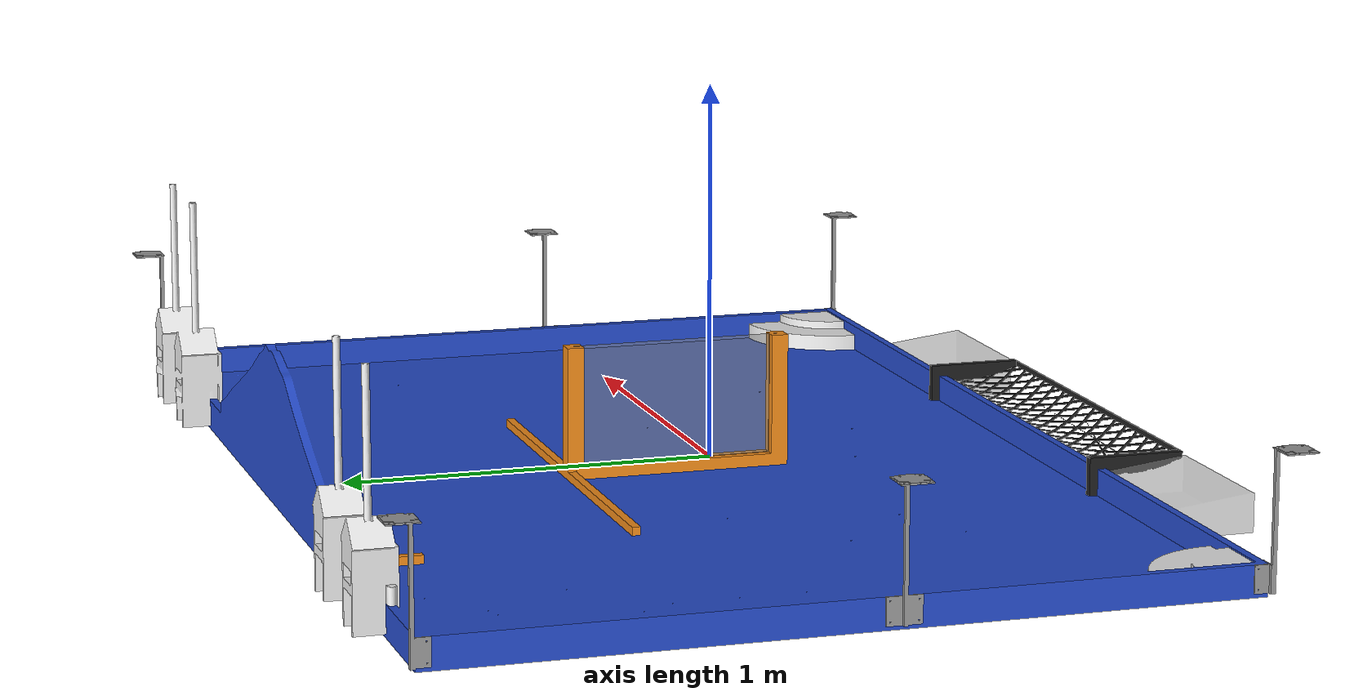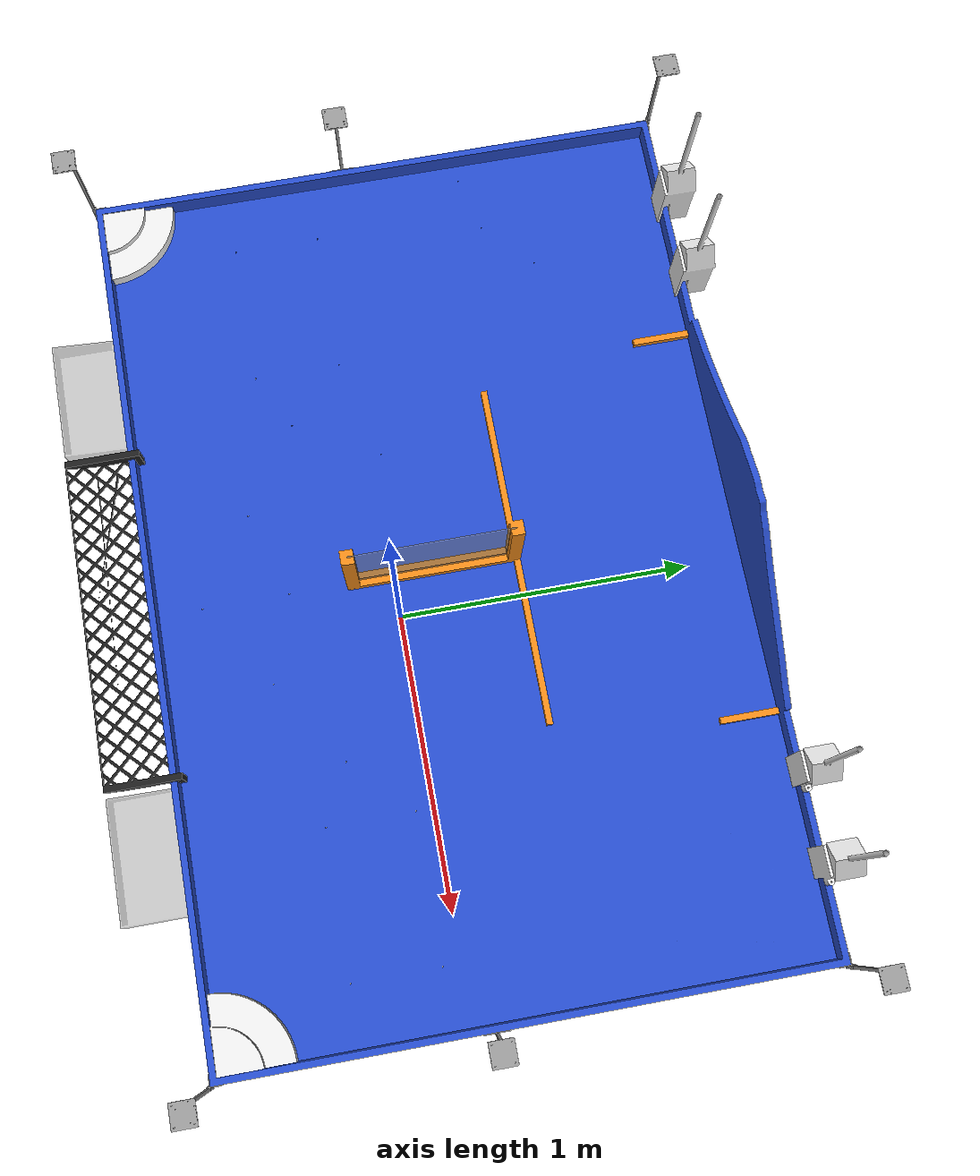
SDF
<?xml version="1.0" ?>
<sdf version="1.4">
  <model name="table2016">
    <pose>0 0 1  1.5708 0 0</pose>
    <static>true</static>
    <link name="1-Table">
      <visual name="visual">
        <geometry>
          <mesh>
            <scale>0.001 0.001 0.001</scale>
            <uri>model://table2016/meshes/1-Table.stl</uri>
          </mesh>
        </geometry>
        <material>
          <script>
            <uri>file://media/materials/scripts/gazebo.material</uri>
            <name>Gazebo/Blue</name>
          </script>
        </material>
      </visual>
      <collision name="collision">
        <geometry>
          <mesh>
            <scale>0.001 0.001 0.001</scale>
            <uri>model://table2016/meshes/1-Table.stl</uri>
          </mesh>
        </geometry>
      </collision>
    </link>
    <link name="2-Roundborder">
      <visual name="visual">
        <geometry>
          <mesh>
            <scale>0.001 0.001 0.001</scale>
            <uri>model://table2016/meshes/2-Roundborder.stl</uri>
          </mesh>
        </geometry>
        <material>
          <script>
            <uri>file://media/materials/scripts/gazebo.material</uri>
            <name>Gazebo/White</name>
          </script>
        </material>
      </visual>
      <collision name="collision">
        <geometry>
          <mesh>
            <scale>0.001 0.001 0.001</scale>
            <uri>model://table2016/meshes/2-Roundborder.stl</uri>
          </mesh>
        </geometry>
      </collision>
    </link>
    <link name="3-FishTank">
      <visual name="visual">
        <geometry>
          <mesh>
            <scale>0.001 0.001 0.001</scale>
            <uri>model://table2016/meshes/3-FishTank.stl</uri>
          </mesh>
        </geometry>
        <material>
          <script>
            <uri>file://media/materials/scripts/gazebo.material</uri>
            <name>Gazebo/GreyTransparent</name>
          </script>
        </material>
      </visual>
      <collision name="collision">
        <geometry>
          <mesh>
            <scale>0.001 0.001 0.001</scale>
            <uri>model://table2016/meshes/3-FishTank.stl</uri>
          </mesh>
        </geometry>
      </collision>
    </link>
    <link name="4-BeaconSupport">
      <visual name="visual">
        <geometry>
          <mesh>
            <scale>0.001 0.001 0.001</scale>
            <uri>model://table2016/meshes/4-BeaconSupport.stl</uri>
          </mesh>
        </geometry>
        <material>
          <script>
            <uri>file://media/materials/scripts/gazebo.material</uri>
            <name>Gazebo/Grey</name>
          </script>
        </material>
      </visual>
      <collision name="collision">
        <geometry>
          <mesh>
            <scale>0.001 0.001 0.001</scale>
            <uri>model://table2016/meshes/4-BeaconSupport.stl</uri>
          </mesh>
        </geometry>
      </collision>
    </link>
    <link name="5-WoodenRods">
      <visual name="visual">
        <geometry>
          <mesh>
            <scale>0.001 0.001 0.001</scale>
            <uri>model://table2016/meshes/5-WoodenRods.stl</uri>
          </mesh>
        </geometry>
        <material>
          <script>
            <uri>file://media/materials/scripts/gazebo.material</uri>
            <name>Gazebo/Orange</name>
          </script>
        </material>
      </visual>
      <collision name="collision">
        <geometry>
          <mesh>
            <scale>0.001 0.001 0.001</scale>
            <uri>model://table2016/meshes/5-WoodenRods.stl</uri>
          </mesh>
        </geometry>
      </collision>
    </link>
    <link name="6-GlassWall">
      <visual name="visual">
        <geometry>
          <mesh>
            <scale>0.001 0.001 0.001</scale>
            <uri>model://table2016/meshes/6-GlassWall.stl</uri>
          </mesh>
        </geometry>
        <material>
          <script>
            <uri>file://media/materials/scripts/gazebo.material</uri>
            <name>Gazebo/GreyTransparent</name>
          </script>
        </material>
      </visual>
      <collision name="collision">
        <geometry>
          <mesh>
            <scale>0.001 0.001 0.001</scale>
            <uri>model://table2016/meshes/6-GlassWall.stl</uri>
          </mesh>
        </geometry>
      </collision>
    </link>
    <link name="7-FishNet">
      <visual name="visual">
        <geometry>
          <mesh>
            <scale>0.001 0.001 0.001</scale>
            <uri>model://table2016/meshes/7-FishNet.stl</uri>
          </mesh>
        </geometry>
        <material>
          <script>
            <uri>file://media/materials/scripts/gazebo.material</uri>
            <name>Gazebo/Black</name>
          </script>
        </material>
      </visual>
      <collision name="collision">
        <geometry>
          <mesh>
            <scale>0.001 0.001 0.001</scale>
            <uri>model://table2016/meshes/7-FishNet.stl</uri>
          </mesh>
        </geometry>
      </collision>
    </link>
    <link name="8-BeachHut">
      <visual name="visual">
        <geometry>
          <mesh>
            <scale>0.001 0.001 0.001</scale>
            <uri>model://table2016/meshes/8-BeachHut.stl</uri>
          </mesh>
        </geometry>
        <material>
          <script>
            <uri>file://media/materials/scripts/gazebo.material</uri>
            <name>Gazebo/White</name>
          </script>
        </material>
      </visual>
      <collision name="collision">
        <geometry>
          <mesh>
            <scale>0.001 0.001 0.001</scale>
            <uri>model://table2016/meshes/8-BeachHut.stl</uri>
          </mesh>
        </geometry>
      </collision>
    </link>
  </model>
</sdf>
